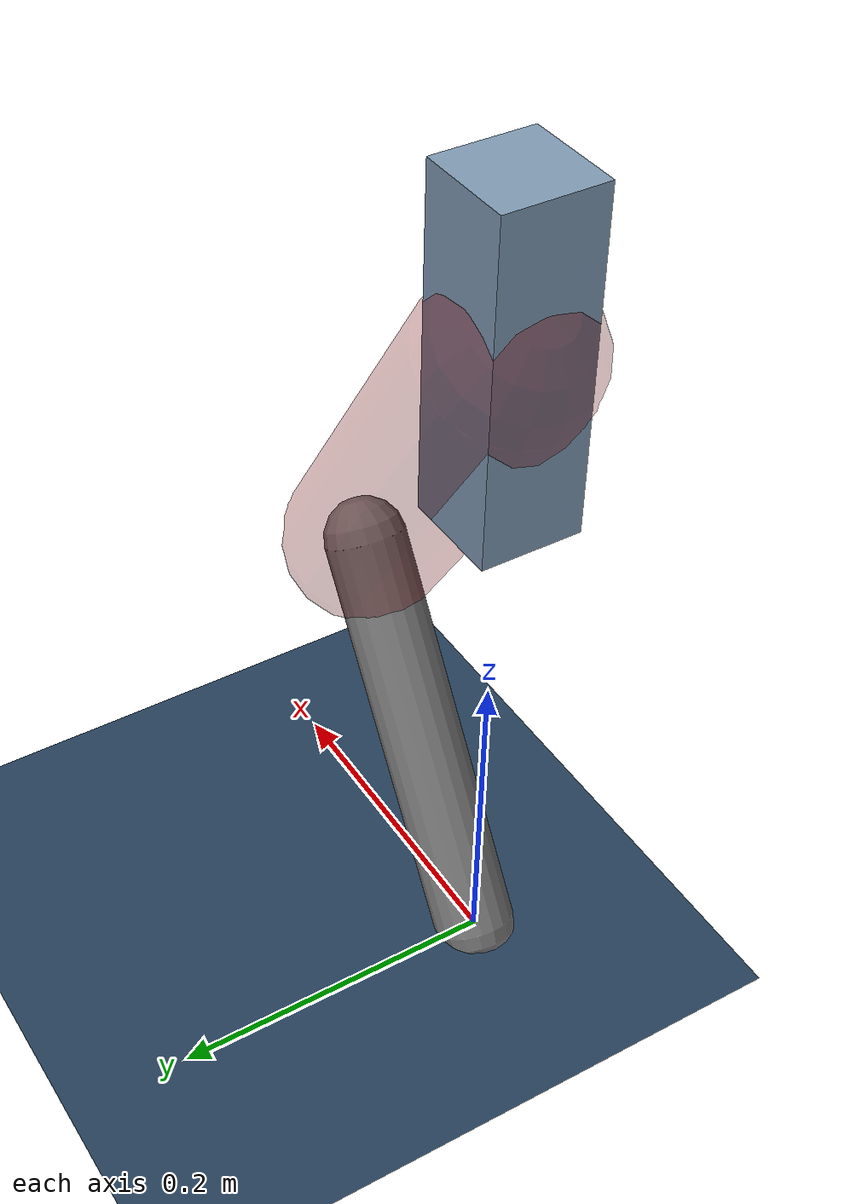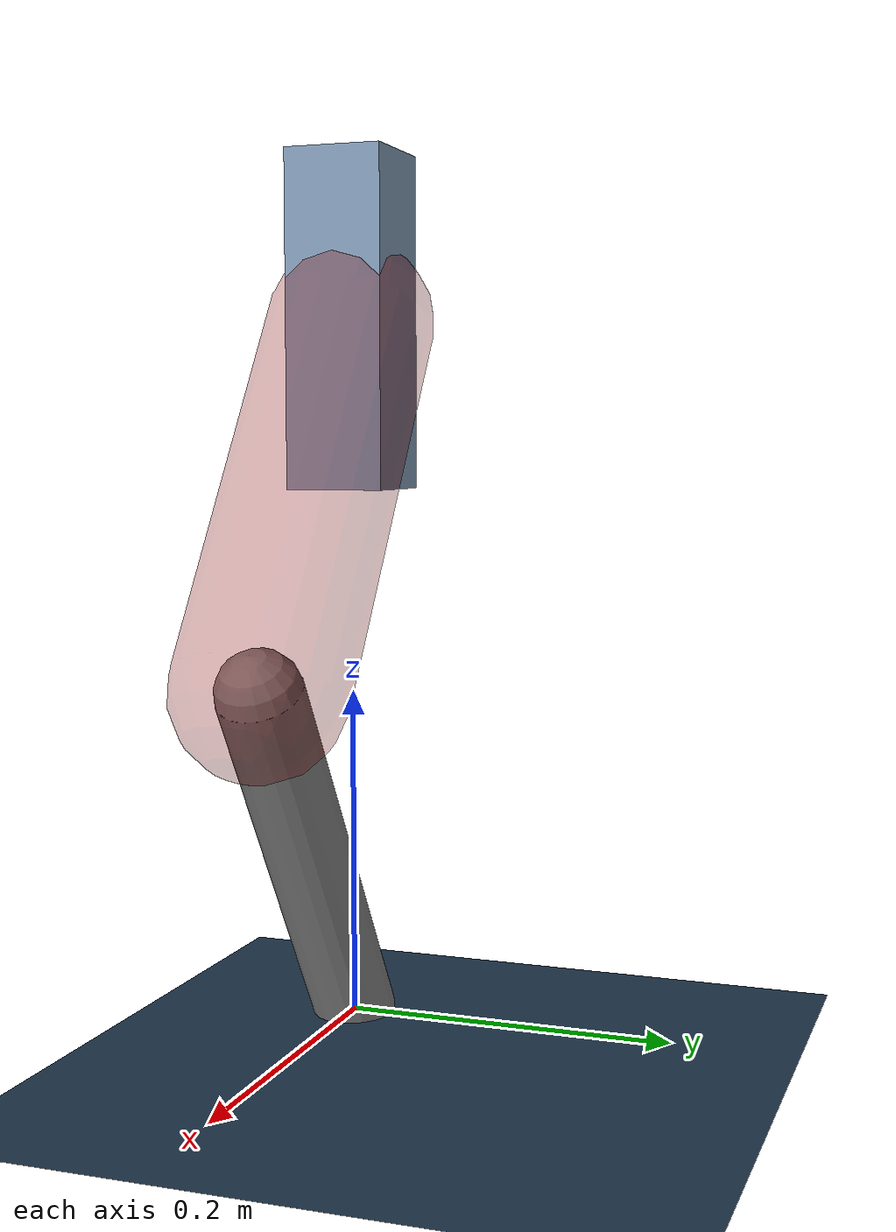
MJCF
<mujoco model="Hopper2D">
	<compiler inertiafromgeom="true" angle="radian" />
	<option timestep="0.001" integrator="implicit" cone="elliptic" solver="Newton" tolerance="1e-10" />

	<default>
		<geom contype="1" conaffinity="1" condim="3" friction="2 0.005 0.0001" solref="0.005 1" />
		<joint limited="true" damping="0.1" />
	</default>

	<asset>
		<texture name="skybox" type="skybox" builtin="gradient" rgb1=".4 .6 .8" rgb2="0 0 0" width="800" height="800" />
		<texture name="grid" type="2d" builtin="checker" rgb1=".1 .2 .3" rgb2=".2 .3 .4" width="300" height="300" mark="edge" markrgb=".2 .3 .4" />
		<material name="ground" texture="grid" texrepeat="1 1" texuniform="true" reflectance="0.1" />
		<material name="leg" rgba="0.5 0.6 0.7 1" />
	</asset>

	<worldbody>

		<geom name="floor" type="plane" size="5 5 0.25" material="ground" />

		<light directional="false" diffuse="0.8 0.8 0.8" specular="0.3 0.3 0.3" pos="0 0 2" dir="0 0 -1" />
		<light mode="targetbodycom" target="base" directional="false" diffuse="0.8 0.8 0.8" specular="0.3 0.3 0.3" pos="0 0 2" dir="0 0 -1" />

		<camera name="fixed" pos="0 -2 1" xyaxes="1 0 0 0 0 1" />
		<camera name="tracking" mode="trackcom" pos="0 -3 1" />

		<body name="root" pos="0 0 0.4235314494438537">
			<joint name="slide_x" type="slide" axis="1 0 0" range="-100 100" />
			<joint name="slide_z" type="slide" axis="0 0 1" range="0 10" />

			<body name="base" pos="0 0 0">
				<geom name="torso" type="box" size="0.03 0.03 0.1" mass="2.859" material="leg" />

				<body name="link1" pos="0 0 0" euler="0 0.9987719027701246 0">
					<joint type="hinge" axis="0 -1 0" pos="0 0 0" name="hinge1" limited="true" range="-3.14 3.14" stiffness="0" damping="0.1" />
					<geom name="thigh" type="capsule" fromto="0 0 0 0.24653558714911167 0 0" size="0.05" rgba="0.5 0 0 0.3" mass="0.8473925265876904" />

					<body name="link2" pos="0.24653558714911167 0 0" euler="0 1.1249731572587638 0">
						<joint type="hinge" axis="0 -1 0" pos="0 0 0" name="hinge2" limited="true" range="-3.14 3.14" stiffness="0" damping="0.1" />
						<geom name="shank" type="capsule" fromto="0 0 0 0.25411027679141496 0 0" size="0.025" mass="0.44588822143313195" />

					</body>
				</body>
			</body>
		</body>
	</worldbody>

	<actuator>
		<motor name="torque1" joint="hinge1" ctrlrange="-90.11009651365495 90.11009651365495" ctrllimited="true" gear="1" />
		<motor name="torque2" joint="hinge2" ctrlrange="-29.753835124997565 29.753835124997565" ctrllimited="true" gear="1" />
	</actuator>
</mujoco>
